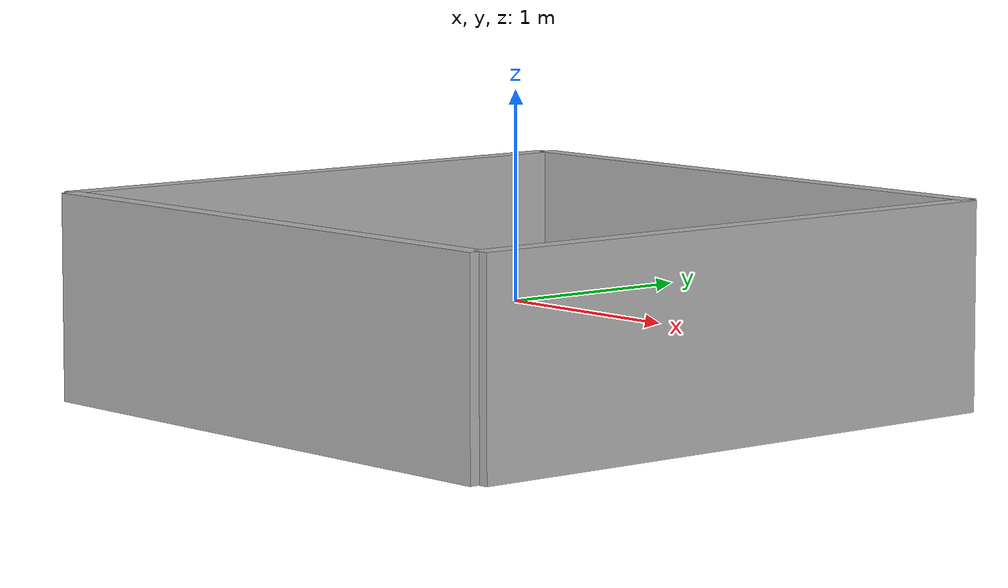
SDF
<?xml version="1.0" ?>
<sdf version="1.6">
  <model name="square_walls">
    <static>true</static>
    <link name="wall1">
      <!-- Wall 1 -->
      <collision name="collision_wall1">
        <geometry>
          <box>
            <size>3 0.1 1</size>
          </box>
        </geometry>
      </collision>
      <visual name="visual_wall1">
        <geometry>
          <box>
            <size>3 0.1 1</size>
          </box>
        </geometry>
        <material>
          <ambient>0.7 0.7 0.7 1</ambient>
          <diffuse>0.7 0.7 0.7 1</diffuse>
        </material>
      </visual>
      <pose>0 1.5 0 0 0 0</pose>
     </link>
      <!-- Wall 2 -->
          <link name="wall2">
      <collision name="collision_wall2">
        <geometry>
          <box>
            <size>3 0.1 1</size>
          </box>
        </geometry>
      </collision>
      <visual name="visual_wall2">
        <geometry>
          <box>
            <size>3 0.1 1</size>
          </box>
        </geometry>
        <material>
          <ambient>0.7 0.7 0.7 1</ambient>
          <diffuse>0.7 0.7 0.7 1</diffuse>
        </material>
      </visual>
      <pose>0 -1.5 0 0 0 0</pose>
      </link>
      <!-- Wall 3 -->
          <link name="wall3">
      <collision name="collision_wall3">
        <geometry>
          <box>
            <size>3 0.1 1</size>
          </box>
        </geometry>
      </collision>
      <visual name="visual_wall3">
        <geometry>
          <box>
            <size>3 0.1 1</size>
          </box>
        </geometry>
        <material>
          <ambient>0.7 0.7 0.7 1</ambient>
          <diffuse>0.7 0.7 0.7 1</diffuse>
        </material>
      </visual>
      <pose>1.5 0 0 0 0 1.5708</pose> <!-- 90 degrees rotation -->
      </link>

      <!-- Wall 4 -->
          <link name="wall4">
      <collision name="collision_wall4">
        <geometry>
          <box>
            <size>3 0.1 1</size>
          </box>
        </geometry>
      </collision>
      <visual name="visual_wall4">
        <geometry>
          <box>
            <size>3 0.1 1</size>
          </box>
        </geometry>
        <material>
          <ambient>0.7 0.7 0.7 1</ambient>
          <diffuse>0.7 0.7 0.7 1</diffuse>
        </material>
      </visual>
      <pose>-1.5 0 0 0 0 1.5708</pose> <!-- 90 degrees rotation -->
</link>
<link name="link">
      <inertial>
        <mass>100.0</mass>
        <inertia>
          <ixx>0.1</ixx>
          <ixy>0.0</ixy>
          <ixz>0.0</ixz>
          <iyy>0.1</iyy>
          <iyz>0.0</iyz>
          <izz>0.1</izz>
        </inertia>
      </inertial>

      <visual name="visual">
        <geometry>
          <box>
            <size>3.0 3.0 0.01</size>
          </box>
        </geometry>
        <material>
          <ambient>1 0 0 1</ambient>  <!-- Red color -->
        </material>
      </visual>
      <pose>0 0 0.0 0 0 0</pose>
    </link>
  </model>
</sdf>
